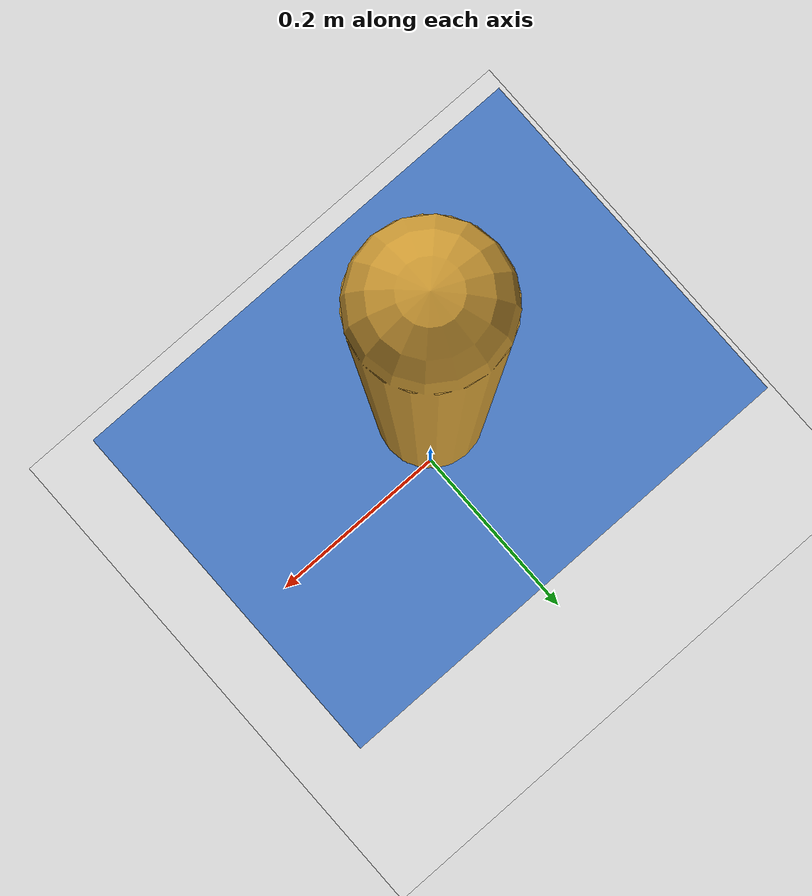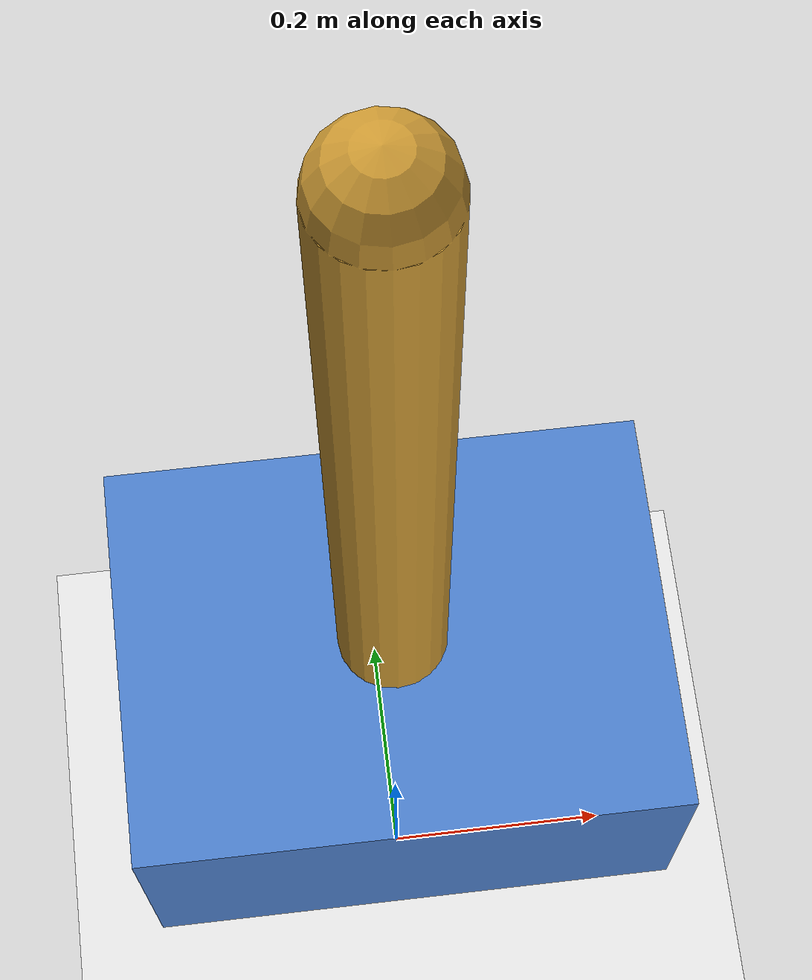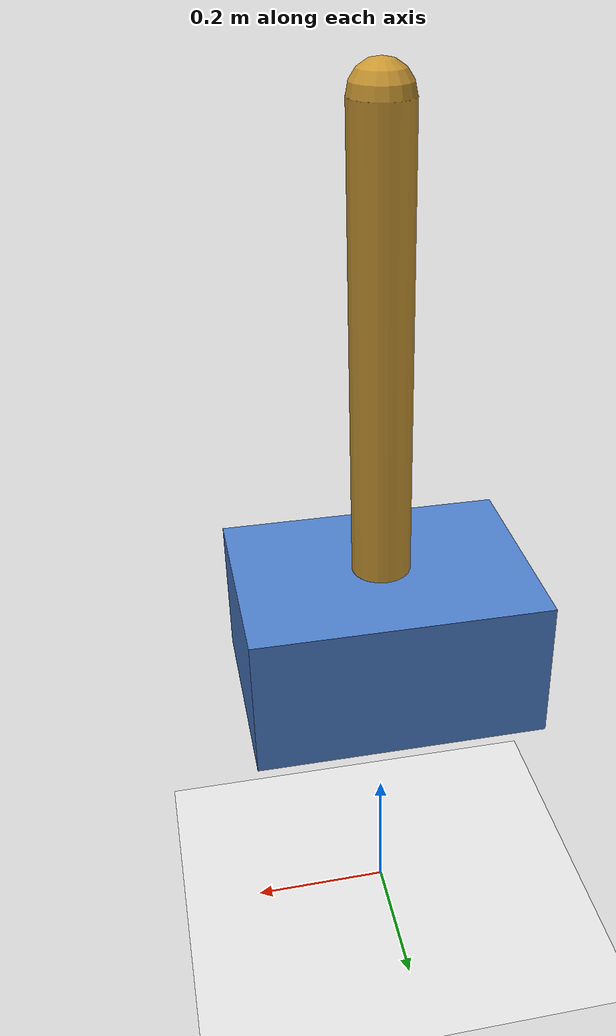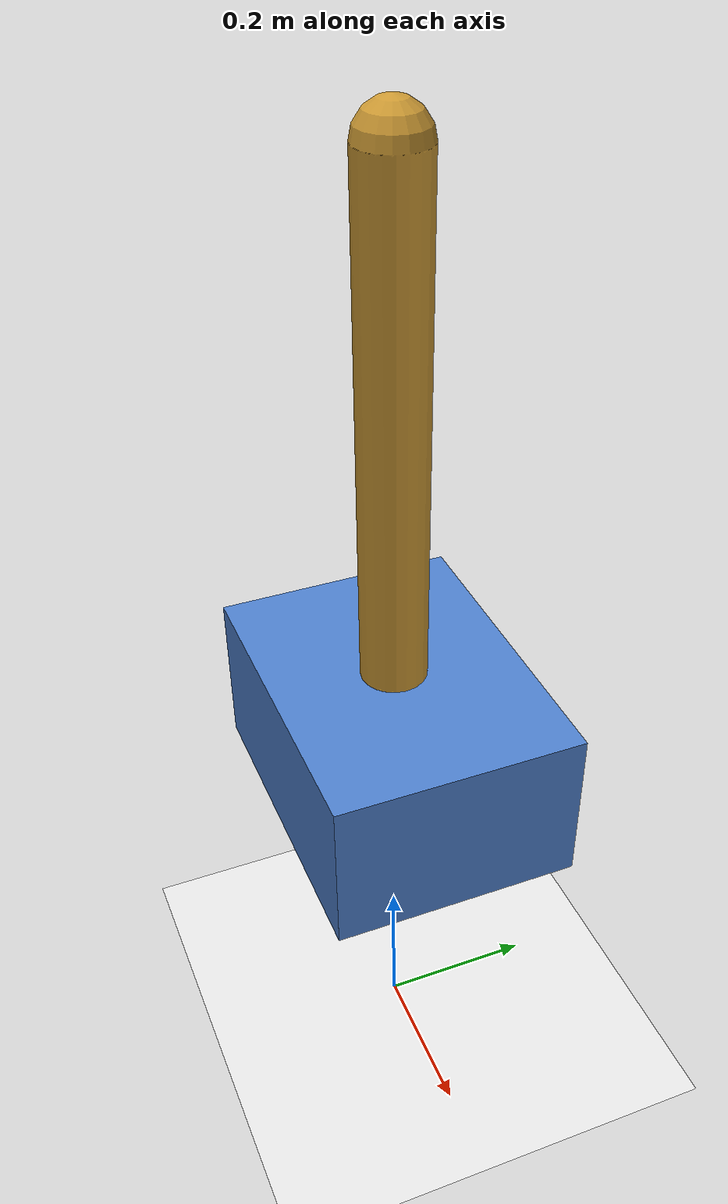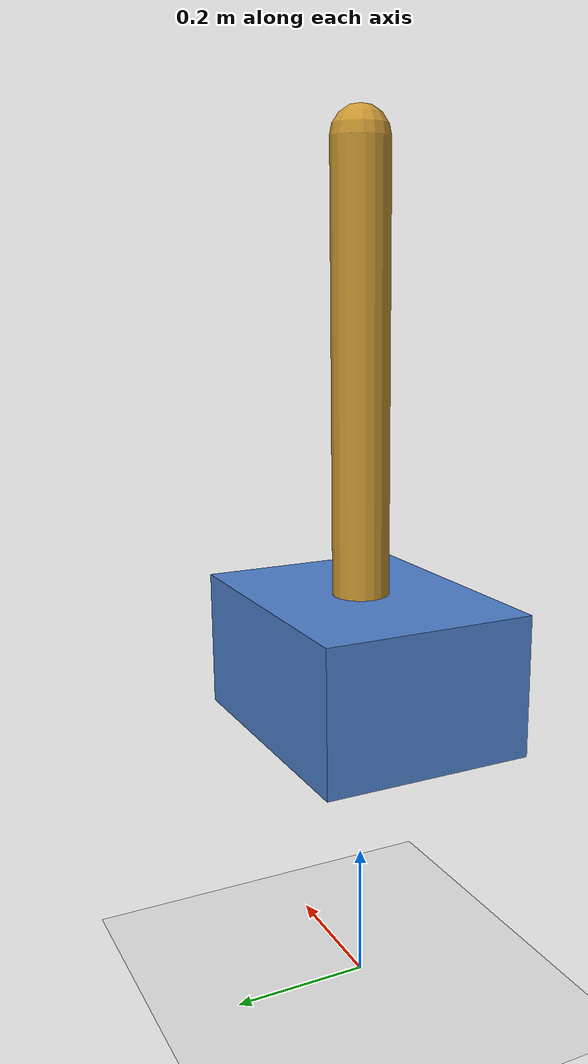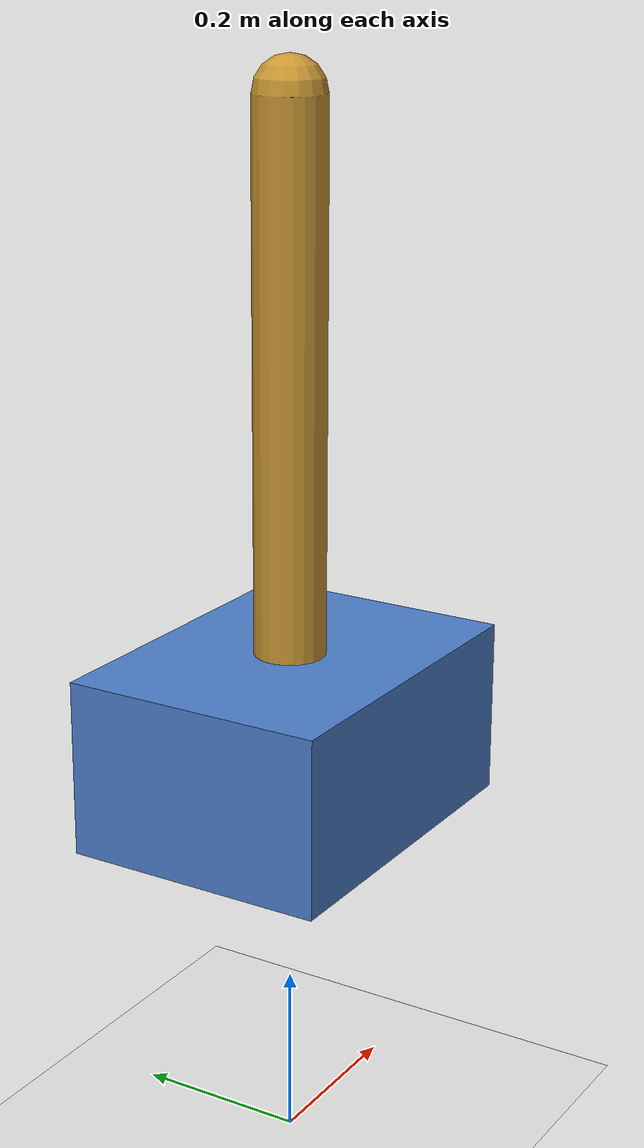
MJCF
<mujoco model="cartpole">
  <option timestep="0.02" integrator="RK4"/>

  <default>
    <joint damping="0.05"/>
    <geom contype="0" conaffinity="0" rgba="0.7 0.3 0.3 1"/>
  </default>

  <worldbody>
    <light diffuse="0.8 0.8 0.8" pos="0 0 3" dir="0 0 -1"/>
    <geom type="plane" size="5 5 0.1" rgba="0.9 0.9 0.9 1"/>

    <!-- Cart -->
    <body name="cart" pos="0 0 0.5">
      <joint name="slider" type="slide" axis="1 0 0" range="-2.4 2.4"/>
      <geom type="box" size="0.2 0.15 0.1" mass="1.0" rgba="0.3 0.5 0.8 1"/>

      <!-- Pole -->
      <body name="pole" pos="0 0 0.1">
        <joint name="hinge" type="hinge" axis="0 1 0"/>
        <geom type="capsule" fromto="0 0 0  0 0 0.6" size="0.04" mass="0.1" rgba="0.8 0.6 0.2 1"/>
      </body>
    </body>
  </worldbody>

  <actuator>
    <motor joint="slider" gear="10" ctrlrange="-1 1" ctrllimited="true"/>
  </actuator>
</mujoco>
